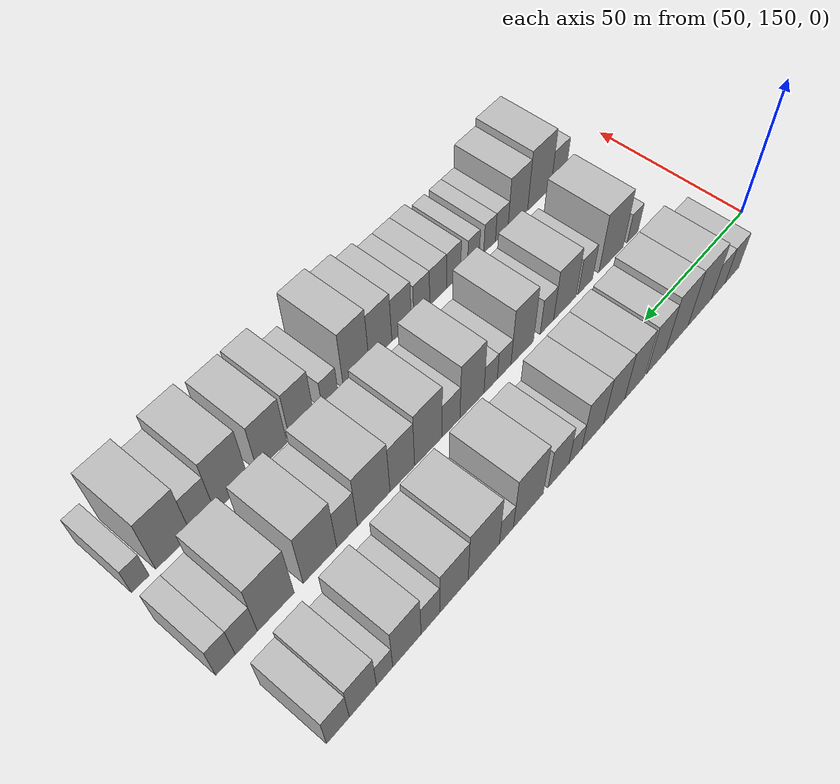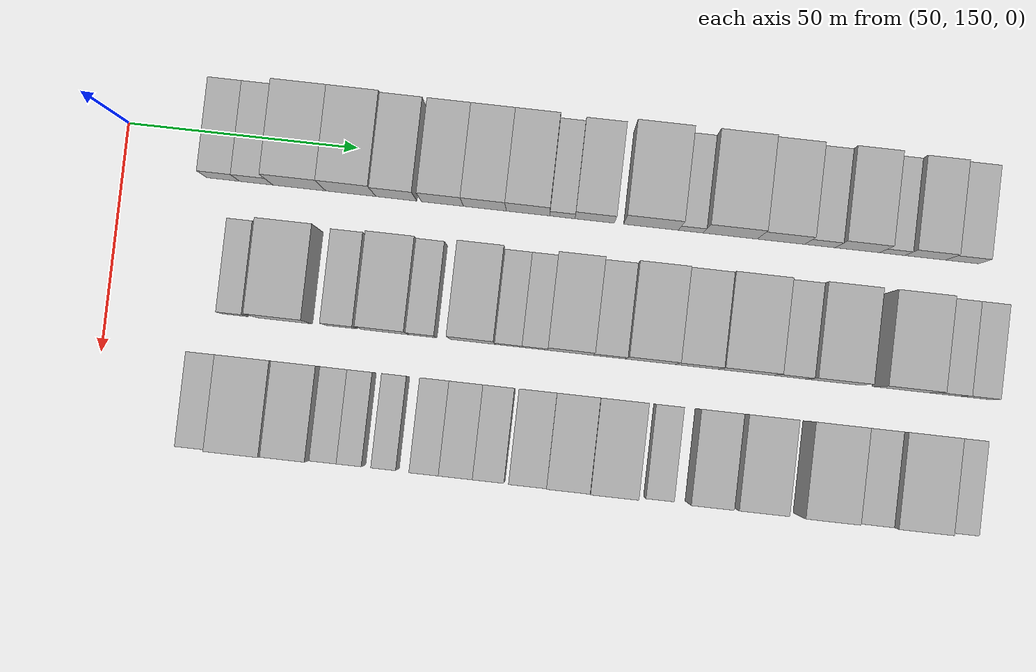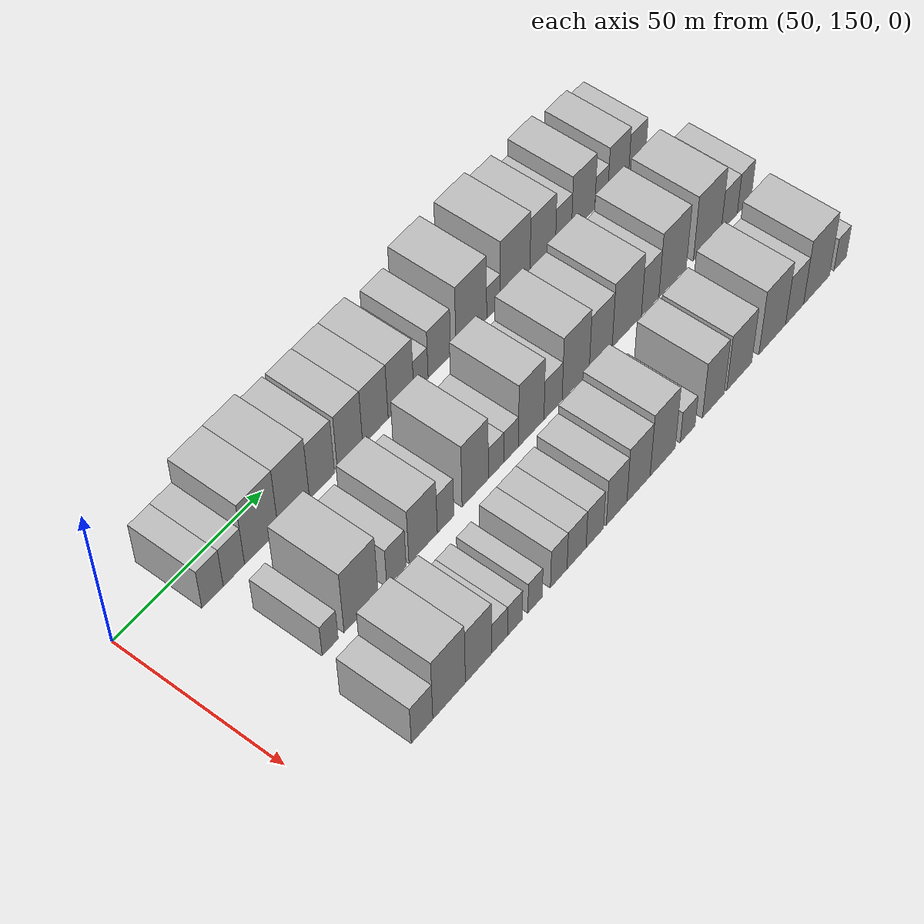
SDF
<sdf version="1.6">
 <world name="default">
  <model name="building_55">
   <static>1</static>
   <pose>50.0000 171.9306 0 0.000000 0.000000 0.000000</pose>
   <link name="link">
    <pose>0 0 7.50 0 0 0</pose>
    <collision name="collision"><geometry><box><size>20.0000 7.1762 15.0000</size></box></geometry></collision>
    <visual name="visual">
     <cast_shadows>0</cast_shadows>
     <geometry><box><size>20.0000 7.1762 15.0000</size></box></geometry>
     <material>
      <script>
       <uri>model://HANNAS_wall/materials/scripts</uri>
       <uri>model://HANNAS_wall/materials/textures</uri>
       <name>vrc/HANNAS_wall</name>
      </script>
     </material>
    </visual>
   </link>
  </model>
  <model name="building_56">
   <static>1</static>
   <pose>50.0000 179.1338 0 0.000000 0.000000 0.000000</pose>
   <link name="link">
    <pose>0 0 7.50 0 0 0</pose>
    <collision name="collision"><geometry><box><size>20.0000 7.2301 15.0000</size></box></geometry></collision>
    <visual name="visual">
     <cast_shadows>0</cast_shadows>
     <geometry><box><size>20.0000 7.2301 15.0000</size></box></geometry>
     <material>
      <script>
       <uri>model://HANNAS_wall/materials/scripts</uri>
       <uri>model://HANNAS_wall/materials/textures</uri>
       <name>vrc/HANNAS_wall</name>
      </script>
     </material>
    </visual>
   </link>
  </model>
  <model name="building_57">
   <static>1</static>
   <pose>50.0000 188.5393 0 0.000000 0.000000 0.000000</pose>
   <link name="link">
    <pose>0 0 12.00 0 0 0</pose>
    <collision name="collision"><geometry><box><size>20.0000 11.5809 24.0000</size></box></geometry></collision>
    <visual name="visual">
     <cast_shadows>0</cast_shadows>
     <geometry><box><size>20.0000 11.5809 24.0000</size></box></geometry>
     <material>
      <script>
       <uri>model://HANNAS_wall/materials/scripts</uri>
       <uri>model://HANNAS_wall/materials/textures</uri>
       <name>vrc/HANNAS_wall</name>
      </script>
     </material>
    </visual>
   </link>
  </model>
  <model name="building_58">
   <static>1</static>
   <pose>50.0000 199.7946 0 0.000000 0.000000 0.000000</pose>
   <link name="link">
    <pose>0 0 12.00 0 0 0</pose>
    <collision name="collision"><geometry><box><size>20.0000 10.9297 24.0000</size></box></geometry></collision>
    <visual name="visual">
     <cast_shadows>0</cast_shadows>
     <geometry><box><size>20.0000 10.9297 24.0000</size></box></geometry>
     <material>
      <script>
       <uri>model://HANNAS_wall/materials/scripts</uri>
       <uri>model://HANNAS_wall/materials/textures</uri>
       <name>vrc/HANNAS_wall</name>
      </script>
     </material>
    </visual>
   </link>
  </model>
  <model name="building_59">
   <static>1</static>
   <pose>50.0000 209.7275 0 0.000000 0.000000 0.000000</pose>
   <link name="link">
    <pose>0 0 10.50 0 0 0</pose>
    <collision name="collision"><geometry><box><size>20.0000 8.9361 21.0000</size></box></geometry></collision>
    <visual name="visual">
     <cast_shadows>0</cast_shadows>
     <geometry><box><size>20.0000 8.9361 21.0000</size></box></geometry>
     <material>
      <script>
       <uri>model://HANNAS_wall/materials/scripts</uri>
       <uri>model://HANNAS_wall/materials/textures</uri>
       <name>vrc/HANNAS_wall</name>
      </script>
     </material>
    </visual>
   </link>
  </model>
  <model name="building_60">
   <static>1</static>
   <pose>50.0000 219.7772 0 0.000000 0.000000 0.000000</pose>
   <link name="link">
    <pose>0 0 10.50 0 0 0</pose>
    <collision name="collision"><geometry><box><size>20.0000 9.1634 21.0000</size></box></geometry></collision>
    <visual name="visual">
     <cast_shadows>0</cast_shadows>
     <geometry><box><size>20.0000 9.1634 21.0000</size></box></geometry>
     <material>
      <script>
       <uri>model://HANNAS_wall/materials/scripts</uri>
       <uri>model://HANNAS_wall/materials/textures</uri>
       <name>vrc/HANNAS_wall</name>
      </script>
     </material>
    </visual>
   </link>
  </model>
  <model name="building_61">
   <static>1</static>
   <pose>50.0000 229.0346 0 0.000000 0.000000 0.000000</pose>
   <link name="link">
    <pose>0 0 10.50 0 0 0</pose>
    <collision name="collision"><geometry><box><size>20.0000 9.3516 21.0000</size></box></geometry></collision>
    <visual name="visual">
     <cast_shadows>0</cast_shadows>
     <geometry><box><size>20.0000 9.3516 21.0000</size></box></geometry>
     <material>
      <script>
       <uri>model://HANNAS_wall/materials/scripts</uri>
       <uri>model://HANNAS_wall/materials/textures</uri>
       <name>vrc/HANNAS_wall</name>
      </script>
     </material>
    </visual>
   </link>
  </model>
  <model name="building_62">
   <static>1</static>
   <pose>50.0000 238.4718 0 0.000000 0.000000 0.000000</pose>
   <link name="link">
    <pose>0 0 10.50 0 0 0</pose>
    <collision name="collision"><geometry><box><size>20.0000 9.5228 21.0000</size></box></geometry></collision>
    <visual name="visual">
     <cast_shadows>0</cast_shadows>
     <geometry><box><size>20.0000 9.5228 21.0000</size></box></geometry>
     <material>
      <script>
       <uri>model://HANNAS_wall/materials/scripts</uri>
       <uri>model://HANNAS_wall/materials/textures</uri>
       <name>vrc/HANNAS_wall</name>
      </script>
     </material>
    </visual>
   </link>
  </model>
  <model name="building_63">
   <static>1</static>
   <pose>50.0000 245.9495 0 0.000000 0.000000 0.000000</pose>
   <link name="link">
    <pose>0 0 6.00 0 0 0</pose>
    <collision name="collision"><geometry><box><size>20.0000 5.4326 12.0000</size></box></geometry></collision>
    <visual name="visual">
     <cast_shadows>0</cast_shadows>
     <geometry><box><size>20.0000 5.4326 12.0000</size></box></geometry>
     <material>
      <script>
       <uri>model://HANNAS_wall/materials/scripts</uri>
       <uri>model://HANNAS_wall/materials/textures</uri>
       <name>vrc/HANNAS_wall</name>
      </script>
     </material>
    </visual>
   </link>
  </model>
  <model name="building_64">
   <static>1</static>
   <pose>50.0000 252.9692 0 0.000000 0.000000 0.000000</pose>
   <link name="link">
    <pose>0 0 9.00 0 0 0</pose>
    <collision name="collision"><geometry><box><size>20.0000 8.6067 18.0000</size></box></geometry></collision>
    <visual name="visual">
     <cast_shadows>0</cast_shadows>
     <geometry><box><size>20.0000 8.6067 18.0000</size></box></geometry>
     <material>
      <script>
       <uri>model://HANNAS_wall/materials/scripts</uri>
       <uri>model://HANNAS_wall/materials/textures</uri>
       <name>vrc/HANNAS_wall</name>
      </script>
     </material>
    </visual>
   </link>
  </model>
  <model name="building_65">
   <static>1</static>
   <pose>50.0000 265.2506 0 0.000000 0.000000 0.000000</pose>
   <link name="link">
    <pose>0 0 12.00 0 0 0</pose>
    <collision name="collision"><geometry><box><size>20.0000 11.9563 24.0000</size></box></geometry></collision>
    <visual name="visual">
     <cast_shadows>0</cast_shadows>
     <geometry><box><size>20.0000 11.9563 24.0000</size></box></geometry>
     <material>
      <script>
       <uri>model://HANNAS_wall/materials/scripts</uri>
       <uri>model://HANNAS_wall/materials/textures</uri>
       <name>vrc/HANNAS_wall</name>
      </script>
     </material>
    </visual>
   </link>
  </model>
  <model name="building_66">
   <static>1</static>
   <pose>50.0000 273.9183 0 0.000000 0.000000 0.000000</pose>
   <link name="link">
    <pose>0 0 6.00 0 0 0</pose>
    <collision name="collision"><geometry><box><size>20.0000 5.3791 12.0000</size></box></geometry></collision>
    <visual name="visual">
     <cast_shadows>0</cast_shadows>
     <geometry><box><size>20.0000 5.3791 12.0000</size></box></geometry>
     <material>
      <script>
       <uri>model://HANNAS_wall/materials/scripts</uri>
       <uri>model://HANNAS_wall/materials/textures</uri>
       <name>vrc/HANNAS_wall</name>
      </script>
     </material>
    </visual>
   </link>
  </model>
  <model name="building_67">
   <static>1</static>
   <pose>50.0000 282.5137 0 0.000000 0.000000 0.000000</pose>
   <link name="link">
    <pose>0 0 12.00 0 0 0</pose>
    <collision name="collision"><geometry><box><size>20.0000 11.8119 24.0000</size></box></geometry></collision>
    <visual name="visual">
     <cast_shadows>0</cast_shadows>
     <geometry><box><size>20.0000 11.8119 24.0000</size></box></geometry>
     <material>
      <script>
       <uri>model://HANNAS_wall/materials/scripts</uri>
       <uri>model://HANNAS_wall/materials/textures</uri>
       <name>vrc/HANNAS_wall</name>
      </script>
     </material>
    </visual>
   </link>
  </model>
  <model name="building_68">
   <static>1</static>
   <pose>50.0000 293.5801 0 0.000000 0.000000 0.000000</pose>
   <link name="link">
    <pose>0 0 10.50 0 0 0</pose>
    <collision name="collision"><geometry><box><size>20.0000 10.3208 21.0000</size></box></geometry></collision>
    <visual name="visual">
     <cast_shadows>0</cast_shadows>
     <geometry><box><size>20.0000 10.3208 21.0000</size></box></geometry>
     <material>
      <script>
       <uri>model://HANNAS_wall/materials/scripts</uri>
       <uri>model://HANNAS_wall/materials/textures</uri>
       <name>vrc/HANNAS_wall</name>
      </script>
     </material>
    </visual>
   </link>
  </model>
  <model name="building_69">
   <static>1</static>
   <pose>50.0000 302.0350 0 0.000000 0.000000 0.000000</pose>
   <link name="link">
    <pose>0 0 7.50 0 0 0</pose>
    <collision name="collision"><geometry><box><size>20.0000 6.5890 15.0000</size></box></geometry></collision>
    <visual name="visual">
     <cast_shadows>0</cast_shadows>
     <geometry><box><size>20.0000 6.5890 15.0000</size></box></geometry>
     <material>
      <script>
       <uri>model://HANNAS_wall/materials/scripts</uri>
       <uri>model://HANNAS_wall/materials/textures</uri>
       <name>vrc/HANNAS_wall</name>
      </script>
     </material>
    </visual>
   </link>
  </model>
  <model name="building_70">
   <static>1</static>
   <pose>50.0000 310.1927 0 0.000000 0.000000 0.000000</pose>
   <link name="link">
    <pose>0 0 10.50 0 0 0</pose>
    <collision name="collision"><geometry><box><size>20.0000 9.7264 21.0000</size></box></geometry></collision>
    <visual name="visual">
     <cast_shadows>0</cast_shadows>
     <geometry><box><size>20.0000 9.7264 21.0000</size></box></geometry>
     <material>
      <script>
       <uri>model://HANNAS_wall/materials/scripts</uri>
       <uri>model://HANNAS_wall/materials/textures</uri>
       <name>vrc/HANNAS_wall</name>
      </script>
     </material>
    </visual>
   </link>
  </model>
  <model name="building_71">
   <static>1</static>
   <pose>50.0000 317.7797 0 0.000000 0.000000 0.000000</pose>
   <link name="link">
    <pose>0 0 6.00 0 0 0</pose>
    <collision name="collision"><geometry><box><size>20.0000 5.4477 12.0000</size></box></geometry></collision>
    <visual name="visual">
     <cast_shadows>0</cast_shadows>
     <geometry><box><size>20.0000 5.4477 12.0000</size></box></geometry>
     <material>
      <script>
       <uri>model://HANNAS_wall/materials/scripts</uri>
       <uri>model://HANNAS_wall/materials/textures</uri>
       <name>vrc/HANNAS_wall</name>
      </script>
     </material>
    </visual>
   </link>
  </model>
  <model name="building_72">
   <static>1</static>
   <pose>50.0000 324.9481 0 0.000000 0.000000 0.000000</pose>
   <link name="link">
    <pose>0 0 9.00 0 0 0</pose>
    <collision name="collision"><geometry><box><size>20.0000 8.8891 18.0000</size></box></geometry></collision>
    <visual name="visual">
     <cast_shadows>0</cast_shadows>
     <geometry><box><size>20.0000 8.8891 18.0000</size></box></geometry>
     <material>
      <script>
       <uri>model://HANNAS_wall/materials/scripts</uri>
       <uri>model://HANNAS_wall/materials/textures</uri>
       <name>vrc/HANNAS_wall</name>
      </script>
     </material>
    </visual>
   </link>
  </model>
  <model name="building_73">
   <static>1</static>
   <pose>50.0000 333.0290 0 0.000000 0.000000 0.000000</pose>
   <link name="link">
    <pose>0 0 7.50 0 0 0</pose>
    <collision name="collision"><geometry><box><size>20.0000 7.2727 15.0000</size></box></geometry></collision>
    <visual name="visual">
     <cast_shadows>0</cast_shadows>
     <geometry><box><size>20.0000 7.2727 15.0000</size></box></geometry>
     <material>
      <script>
       <uri>model://HANNAS_wall/materials/scripts</uri>
       <uri>model://HANNAS_wall/materials/textures</uri>
       <name>vrc/HANNAS_wall</name>
      </script>
     </material>
    </visual>
   </link>
  </model>
  <model name="building_132">
   <static>1</static>
   <pose>79.0000 178.1046 0 0.000000 0.000000 0.000000</pose>
   <link name="link">
    <pose>0 0 6.00 0 0 0</pose>
    <collision name="collision"><geometry><box><size>20.0000 5.4597 12.0000</size></box></geometry></collision>
    <visual name="visual">
     <cast_shadows>0</cast_shadows>
     <geometry><box><size>20.0000 5.4597 12.0000</size></box></geometry>
     <material>
      <script>
       <uri>model://HANNAS_wall/materials/scripts</uri>
       <uri>model://HANNAS_wall/materials/textures</uri>
       <name>vrc/HANNAS_wall</name>
      </script>
     </material>
    </visual>
   </link>
  </model>
  <model name="building_133">
   <static>1</static>
   <pose>79.0000 188.7952 0 0.000000 0.000000 0.000000</pose>
   <link name="link">
    <pose>0 0 12.00 0 0 0</pose>
    <collision name="collision"><geometry><box><size>20.0000 11.9215 24.0000</size></box></geometry></collision>
    <visual name="visual">
     <cast_shadows>0</cast_shadows>
     <geometry><box><size>20.0000 11.9215 24.0000</size></box></geometry>
     <material>
      <script>
       <uri>model://HANNAS_wall/materials/scripts</uri>
       <uri>model://HANNAS_wall/materials/textures</uri>
       <name>vrc/HANNAS_wall</name>
      </script>
     </material>
    </visual>
   </link>
  </model>
  <model name="building_134">
   <static>1</static>
   <pose>79.0000 201.1788 0 0.000000 0.000000 0.000000</pose>
   <link name="link">
    <pose>0 0 7.50 0 0 0</pose>
    <collision name="collision"><geometry><box><size>20.0000 6.8458 15.0000</size></box></geometry></collision>
    <visual name="visual">
     <cast_shadows>0</cast_shadows>
     <geometry><box><size>20.0000 6.8458 15.0000</size></box></geometry>
     <material>
      <script>
       <uri>model://HANNAS_wall/materials/scripts</uri>
       <uri>model://HANNAS_wall/materials/textures</uri>
       <name>vrc/HANNAS_wall</name>
      </script>
     </material>
    </visual>
   </link>
  </model>
  <model name="building_135">
   <static>1</static>
   <pose>79.0000 210.7209 0 0.000000 0.000000 0.000000</pose>
   <link name="link">
    <pose>0 0 10.50 0 0 0</pose>
    <collision name="collision"><geometry><box><size>20.0000 10.2384 21.0000</size></box></geometry></collision>
    <visual name="visual">
     <cast_shadows>0</cast_shadows>
     <geometry><box><size>20.0000 10.2384 21.0000</size></box></geometry>
     <material>
      <script>
       <uri>model://HANNAS_wall/materials/scripts</uri>
       <uri>model://HANNAS_wall/materials/textures</uri>
       <name>vrc/HANNAS_wall</name>
      </script>
     </material>
    </visual>
   </link>
  </model>
  <model name="building_136">
   <static>1</static>
   <pose>79.0000 218.8565 0 0.000000 0.000000 0.000000</pose>
   <link name="link">
    <pose>0 0 7.50 0 0 0</pose>
    <collision name="collision"><geometry><box><size>20.0000 6.0328 15.0000</size></box></geometry></collision>
    <visual name="visual">
     <cast_shadows>0</cast_shadows>
     <geometry><box><size>20.0000 6.0328 15.0000</size></box></geometry>
     <material>
      <script>
       <uri>model://HANNAS_wall/materials/scripts</uri>
       <uri>model://HANNAS_wall/materials/textures</uri>
       <name>vrc/HANNAS_wall</name>
      </script>
     </material>
    </visual>
   </link>
  </model>
  <model name="building_137">
   <static>1</static>
   <pose>79.0000 229.7588 0 0.000000 0.000000 0.000000</pose>
   <link name="link">
    <pose>0 0 12.00 0 0 0</pose>
    <collision name="collision"><geometry><box><size>20.0000 9.7717 24.0000</size></box></geometry></collision>
    <visual name="visual">
     <cast_shadows>0</cast_shadows>
     <geometry><box><size>20.0000 9.7717 24.0000</size></box></geometry>
     <material>
      <script>
       <uri>model://HANNAS_wall/materials/scripts</uri>
       <uri>model://HANNAS_wall/materials/textures</uri>
       <name>vrc/HANNAS_wall</name>
      </script>
     </material>
    </visual>
   </link>
  </model>
  <model name="building_138">
   <static>1</static>
   <pose>79.0000 237.5516 0 0.000000 0.000000 0.000000</pose>
   <link name="link">
    <pose>0 0 6.00 0 0 0</pose>
    <collision name="collision"><geometry><box><size>20.0000 5.8139 12.0000</size></box></geometry></collision>
    <visual name="visual">
     <cast_shadows>0</cast_shadows>
     <geometry><box><size>20.0000 5.8139 12.0000</size></box></geometry>
     <material>
      <script>
       <uri>model://HANNAS_wall/materials/scripts</uri>
       <uri>model://HANNAS_wall/materials/textures</uri>
       <name>vrc/HANNAS_wall</name>
      </script>
     </material>
    </visual>
   </link>
  </model>
  <model name="building_139">
   <static>1</static>
   <pose>79.0000 243.2428 0 0.000000 0.000000 0.000000</pose>
   <link name="link">
    <pose>0 0 6.00 0 0 0</pose>
    <collision name="collision"><geometry><box><size>20.0000 5.5685 12.0000</size></box></geometry></collision>
    <visual name="visual">
     <cast_shadows>0</cast_shadows>
     <geometry><box><size>20.0000 5.5685 12.0000</size></box></geometry>
     <material>
      <script>
       <uri>model://HANNAS_wall/materials/scripts</uri>
       <uri>model://HANNAS_wall/materials/textures</uri>
       <name>vrc/HANNAS_wall</name>
      </script>
     </material>
    </visual>
   </link>
  </model>
  <model name="building_140">
   <static>1</static>
   <pose>79.0000 250.9247 0 0.000000 0.000000 0.000000</pose>
   <link name="link">
    <pose>0 0 12.00 0 0 0</pose>
    <collision name="collision"><geometry><box><size>20.0000 9.7952 24.0000</size></box></geometry></collision>
    <visual name="visual">
     <cast_shadows>0</cast_shadows>
     <geometry><box><size>20.0000 9.7952 24.0000</size></box></geometry>
     <material>
      <script>
       <uri>model://HANNAS_wall/materials/scripts</uri>
       <uri>model://HANNAS_wall/materials/textures</uri>
       <name>vrc/HANNAS_wall</name>
      </script>
     </material>
    </visual>
   </link>
  </model>
  <model name="building_141">
   <static>1</static>
   <pose>79.0000 259.3629 0 0.000000 0.000000 0.000000</pose>
   <link name="link">
    <pose>0 0 7.50 0 0 0</pose>
    <collision name="collision"><geometry><box><size>20.0000 7.0812 15.0000</size></box></geometry></collision>
    <visual name="visual">
     <cast_shadows>0</cast_shadows>
     <geometry><box><size>20.0000 7.0812 15.0000</size></box></geometry>
     <material>
      <script>
       <uri>model://HANNAS_wall/materials/scripts</uri>
       <uri>model://HANNAS_wall/materials/textures</uri>
       <name>vrc/HANNAS_wall</name>
      </script>
     </material>
    </visual>
   </link>
  </model>
  <model name="building_142">
   <static>1</static>
   <pose>79.0000 268.2480 0 0.000000 0.000000 0.000000</pose>
   <link name="link">
    <pose>0 0 12.00 0 0 0</pose>
    <collision name="collision"><geometry><box><size>20.0000 10.6891 24.0000</size></box></geometry></collision>
    <visual name="visual">
     <cast_shadows>0</cast_shadows>
     <geometry><box><size>20.0000 10.6891 24.0000</size></box></geometry>
     <material>
      <script>
       <uri>model://HANNAS_wall/materials/scripts</uri>
       <uri>model://HANNAS_wall/materials/textures</uri>
       <name>vrc/HANNAS_wall</name>
      </script>
     </material>
    </visual>
   </link>
  </model>
  <model name="building_143">
   <static>1</static>
   <pose>79.0000 278.2023 0 0.000000 0.000000 0.000000</pose>
   <link name="link">
    <pose>0 0 10.50 0 0 0</pose>
    <collision name="collision"><geometry><box><size>20.0000 9.2196 21.0000</size></box></geometry></collision>
    <visual name="visual">
     <cast_shadows>0</cast_shadows>
     <geometry><box><size>20.0000 9.2196 21.0000</size></box></geometry>
     <material>
      <script>
       <uri>model://HANNAS_wall/materials/scripts</uri>
       <uri>model://HANNAS_wall/materials/textures</uri>
       <name>vrc/HANNAS_wall</name>
      </script>
     </material>
    </visual>
   </link>
  </model>
  <model name="building_144">
   <static>1</static>
   <pose>79.0000 288.7711 0 0.000000 0.000000 0.000000</pose>
   <link name="link">
    <pose>0 0 12.00 0 0 0</pose>
    <collision name="collision"><geometry><box><size>20.0000 11.9180 24.0000</size></box></geometry></collision>
    <visual name="visual">
     <cast_shadows>0</cast_shadows>
     <geometry><box><size>20.0000 11.9180 24.0000</size></box></geometry>
     <material>
      <script>
       <uri>model://HANNAS_wall/materials/scripts</uri>
       <uri>model://HANNAS_wall/materials/textures</uri>
       <name>vrc/HANNAS_wall</name>
      </script>
     </material>
    </visual>
   </link>
  </model>
  <model name="building_145">
   <static>1</static>
   <pose>79.0000 298.3489 0 0.000000 0.000000 0.000000</pose>
   <link name="link">
    <pose>0 0 9.00 0 0 0</pose>
    <collision name="collision"><geometry><box><size>20.0000 7.2376 18.0000</size></box></geometry></collision>
    <visual name="visual">
     <cast_shadows>0</cast_shadows>
     <geometry><box><size>20.0000 7.2376 18.0000</size></box></geometry>
     <material>
      <script>
       <uri>model://HANNAS_wall/materials/scripts</uri>
       <uri>model://HANNAS_wall/materials/textures</uri>
       <name>vrc/HANNAS_wall</name>
      </script>
     </material>
    </visual>
   </link>
  </model>
  <model name="building_146">
   <static>1</static>
   <pose>79.0000 307.7275 0 0.000000 0.000000 0.000000</pose>
   <link name="link">
    <pose>0 0 12.00 0 0 0</pose>
    <collision name="collision"><geometry><box><size>20.0000 11.5196 24.0000</size></box></geometry></collision>
    <visual name="visual">
     <cast_shadows>0</cast_shadows>
     <geometry><box><size>20.0000 11.5196 24.0000</size></box></geometry>
     <material>
      <script>
       <uri>model://HANNAS_wall/materials/scripts</uri>
       <uri>model://HANNAS_wall/materials/textures</uri>
       <name>vrc/HANNAS_wall</name>
      </script>
     </material>
    </visual>
   </link>
  </model>
  <model name="building_147">
   <static>1</static>
   <pose>79.0000 322.4708 0 0.000000 0.000000 0.000000</pose>
   <link name="link">
    <pose>0 0 12.00 0 0 0</pose>
    <collision name="collision"><geometry><box><size>20.0000 11.9671 24.0000</size></box></geometry></collision>
    <visual name="visual">
     <cast_shadows>0</cast_shadows>
     <geometry><box><size>20.0000 11.9671 24.0000</size></box></geometry>
     <material>
      <script>
       <uri>model://HANNAS_wall/materials/scripts</uri>
       <uri>model://HANNAS_wall/materials/textures</uri>
       <name>vrc/HANNAS_wall</name>
      </script>
     </material>
    </visual>
   </link>
  </model>
  <model name="building_148">
   <static>1</static>
   <pose>79.0000 331.9648 0 0.000000 0.000000 0.000000</pose>
   <link name="link">
    <pose>0 0 7.50 0 0 0</pose>
    <collision name="collision"><geometry><box><size>20.0000 7.0208 15.0000</size></box></geometry></collision>
    <visual name="visual">
     <cast_shadows>0</cast_shadows>
     <geometry><box><size>20.0000 7.0208 15.0000</size></box></geometry>
     <material>
      <script>
       <uri>model://HANNAS_wall/materials/scripts</uri>
       <uri>model://HANNAS_wall/materials/textures</uri>
       <name>vrc/HANNAS_wall</name>
      </script>
     </material>
    </visual>
   </link>
  </model>
  <model name="building_149">
   <static>1</static>
   <pose>79.0000 338.5031 0 0.000000 0.000000 0.000000</pose>
   <link name="link">
    <pose>0 0 7.50 0 0 0</pose>
    <collision name="collision"><geometry><box><size>20.0000 6.0558 15.0000</size></box></geometry></collision>
    <visual name="visual">
     <cast_shadows>0</cast_shadows>
     <geometry><box><size>20.0000 6.0558 15.0000</size></box></geometry>
     <material>
      <script>
       <uri>model://HANNAS_wall/materials/scripts</uri>
       <uri>model://HANNAS_wall/materials/textures</uri>
       <name>vrc/HANNAS_wall</name>
      </script>
     </material>
    </visual>
   </link>
  </model>
  <model name="building_207">
   <static>1</static>
   <pose>108.0000 174.2640 0 0.000000 0.000000 0.000000</pose>
   <link name="link">
    <pose>0 0 7.50 0 0 0</pose>
    <collision name="collision"><geometry><box><size>20.0000 7.3921 15.0000</size></box></geometry></collision>
    <visual name="visual">
     <cast_shadows>0</cast_shadows>
     <geometry><box><size>20.0000 7.3921 15.0000</size></box></geometry>
     <material>
      <script>
       <uri>model://HANNAS_wall/materials/scripts</uri>
       <uri>model://HANNAS_wall/materials/textures</uri>
       <name>vrc/HANNAS_wall</name>
      </script>
     </material>
    </visual>
   </link>
  </model>
  <model name="building_208">
   <static>1</static>
   <pose>108.0000 183.6221 0 0.000000 0.000000 0.000000</pose>
   <link name="link">
    <pose>0 0 12.00 0 0 0</pose>
    <collision name="collision"><geometry><box><size>20.0000 11.3242 24.0000</size></box></geometry></collision>
    <visual name="visual">
     <cast_shadows>0</cast_shadows>
     <geometry><box><size>20.0000 11.3242 24.0000</size></box></geometry>
     <material>
      <script>
       <uri>model://HANNAS_wall/materials/scripts</uri>
       <uri>model://HANNAS_wall/materials/textures</uri>
       <name>vrc/HANNAS_wall</name>
      </script>
     </material>
    </visual>
   </link>
  </model>
  <model name="building_209">
   <static>1</static>
   <pose>108.0000 193.9323 0 0.000000 0.000000 0.000000</pose>
   <link name="link">
    <pose>0 0 10.50 0 0 0</pose>
    <collision name="collision"><geometry><box><size>20.0000 9.2961 21.0000</size></box></geometry></collision>
    <visual name="visual">
     <cast_shadows>0</cast_shadows>
     <geometry><box><size>20.0000 9.2961 21.0000</size></box></geometry>
     <material>
      <script>
       <uri>model://HANNAS_wall/materials/scripts</uri>
       <uri>model://HANNAS_wall/materials/textures</uri>
       <name>vrc/HANNAS_wall</name>
      </script>
     </material>
    </visual>
   </link>
  </model>
  <model name="building_210">
   <static>1</static>
   <pose>108.0000 201.4589 0 0.000000 0.000000 0.000000</pose>
   <link name="link">
    <pose>0 0 6.00 0 0 0</pose>
    <collision name="collision"><geometry><box><size>20.0000 5.7571 12.0000</size></box></geometry></collision>
    <visual name="visual">
     <cast_shadows>0</cast_shadows>
     <geometry><box><size>20.0000 5.7571 12.0000</size></box></geometry>
     <material>
      <script>
       <uri>model://HANNAS_wall/materials/scripts</uri>
       <uri>model://HANNAS_wall/materials/textures</uri>
       <name>vrc/HANNAS_wall</name>
      </script>
     </material>
    </visual>
   </link>
  </model>
  <model name="building_211">
   <static>1</static>
   <pose>108.0000 207.0061 0 0.000000 0.000000 0.000000</pose>
   <link name="link">
    <pose>0 0 6.00 0 0 0</pose>
    <collision name="collision"><geometry><box><size>20.0000 5.3373 12.0000</size></box></geometry></collision>
    <visual name="visual">
     <cast_shadows>0</cast_shadows>
     <geometry><box><size>20.0000 5.3373 12.0000</size></box></geometry>
     <material>
      <script>
       <uri>model://HANNAS_wall/materials/scripts</uri>
       <uri>model://HANNAS_wall/materials/textures</uri>
       <name>vrc/HANNAS_wall</name>
      </script>
     </material>
    </visual>
   </link>
  </model>
  <model name="building_212">
   <static>1</static>
   <pose>108.0000 214.3092 0 0.000000 0.000000 0.000000</pose>
   <link name="link">
    <pose>0 0 6.00 0 0 0</pose>
    <collision name="collision"><geometry><box><size>20.0000 5.2690 12.0000</size></box></geometry></collision>
    <visual name="visual">
     <cast_shadows>0</cast_shadows>
     <geometry><box><size>20.0000 5.2690 12.0000</size></box></geometry>
     <material>
      <script>
       <uri>model://HANNAS_wall/materials/scripts</uri>
       <uri>model://HANNAS_wall/materials/textures</uri>
       <name>vrc/HANNAS_wall</name>
      </script>
     </material>
    </visual>
   </link>
  </model>
  <model name="building_213">
   <static>1</static>
   <pose>108.0000 223.0360 0 0.000000 0.000000 0.000000</pose>
   <link name="link">
    <pose>0 0 7.50 0 0 0</pose>
    <collision name="collision"><geometry><box><size>20.0000 6.1845 15.0000</size></box></geometry></collision>
    <visual name="visual">
     <cast_shadows>0</cast_shadows>
     <geometry><box><size>20.0000 6.1845 15.0000</size></box></geometry>
     <material>
      <script>
       <uri>model://HANNAS_wall/materials/scripts</uri>
       <uri>model://HANNAS_wall/materials/textures</uri>
       <name>vrc/HANNAS_wall</name>
      </script>
     </material>
    </visual>
   </link>
  </model>
  <model name="building_214">
   <static>1</static>
   <pose>108.0000 229.7118 0 0.000000 0.000000 0.000000</pose>
   <link name="link">
    <pose>0 0 7.50 0 0 0</pose>
    <collision name="collision"><geometry><box><size>20.0000 7.1673 15.0000</size></box></geometry></collision>
    <visual name="visual">
     <cast_shadows>0</cast_shadows>
     <geometry><box><size>20.0000 7.1673 15.0000</size></box></geometry>
     <material>
      <script>
       <uri>model://HANNAS_wall/materials/scripts</uri>
       <uri>model://HANNAS_wall/materials/textures</uri>
       <name>vrc/HANNAS_wall</name>
      </script>
     </material>
    </visual>
   </link>
  </model>
  <model name="building_215">
   <static>1</static>
   <pose>108.0000 236.6265 0 0.000000 0.000000 0.000000</pose>
   <link name="link">
    <pose>0 0 7.50 0 0 0</pose>
    <collision name="collision"><geometry><box><size>20.0000 6.6622 15.0000</size></box></geometry></collision>
    <visual name="visual">
     <cast_shadows>0</cast_shadows>
     <geometry><box><size>20.0000 6.6622 15.0000</size></box></geometry>
     <material>
      <script>
       <uri>model://HANNAS_wall/materials/scripts</uri>
       <uri>model://HANNAS_wall/materials/textures</uri>
       <name>vrc/HANNAS_wall</name>
      </script>
     </material>
    </visual>
   </link>
  </model>
  <model name="building_216">
   <static>1</static>
   <pose>108.0000 244.9397 0 0.000000 0.000000 0.000000</pose>
   <link name="link">
    <pose>0 0 9.00 0 0 0</pose>
    <collision name="collision"><geometry><box><size>20.0000 7.9642 18.0000</size></box></geometry></collision>
    <visual name="visual">
     <cast_shadows>0</cast_shadows>
     <geometry><box><size>20.0000 7.9642 18.0000</size></box></geometry>
     <material>
      <script>
       <uri>model://HANNAS_wall/materials/scripts</uri>
       <uri>model://HANNAS_wall/materials/textures</uri>
       <name>vrc/HANNAS_wall</name>
      </script>
     </material>
    </visual>
   </link>
  </model>
  <model name="building_217">
   <static>1</static>
   <pose>108.0000 253.4693 0 0.000000 0.000000 0.000000</pose>
   <link name="link">
    <pose>0 0 10.50 0 0 0</pose>
    <collision name="collision"><geometry><box><size>20.0000 9.0950 21.0000</size></box></geometry></collision>
    <visual name="visual">
     <cast_shadows>0</cast_shadows>
     <geometry><box><size>20.0000 9.0950 21.0000</size></box></geometry>
     <material>
      <script>
       <uri>model://HANNAS_wall/materials/scripts</uri>
       <uri>model://HANNAS_wall/materials/textures</uri>
       <name>vrc/HANNAS_wall</name>
      </script>
     </material>
    </visual>
   </link>
  </model>
  <model name="building_218">
   <static>1</static>
   <pose>108.0000 263.0110 0 0.000000 0.000000 0.000000</pose>
   <link name="link">
    <pose>0 0 12.00 0 0 0</pose>
    <collision name="collision"><geometry><box><size>20.0000 9.9885 24.0000</size></box></geometry></collision>
    <visual name="visual">
     <cast_shadows>0</cast_shadows>
     <geometry><box><size>20.0000 9.9885 24.0000</size></box></geometry>
     <material>
      <script>
       <uri>model://HANNAS_wall/materials/scripts</uri>
       <uri>model://HANNAS_wall/materials/textures</uri>
       <name>vrc/HANNAS_wall</name>
      </script>
     </material>
    </visual>
   </link>
  </model>
  <model name="building_219">
   <static>1</static>
   <pose>108.0000 273.0013 0 0.000000 0.000000 0.000000</pose>
   <link name="link">
    <pose>0 0 6.00 0 0 0</pose>
    <collision name="collision"><geometry><box><size>20.0000 5.9920 12.0000</size></box></geometry></collision>
    <visual name="visual">
     <cast_shadows>0</cast_shadows>
     <geometry><box><size>20.0000 5.9920 12.0000</size></box></geometry>
     <material>
      <script>
       <uri>model://HANNAS_wall/materials/scripts</uri>
       <uri>model://HANNAS_wall/materials/textures</uri>
       <name>vrc/HANNAS_wall</name>
      </script>
     </material>
    </visual>
   </link>
  </model>
  <model name="building_220">
   <static>1</static>
   <pose>108.0000 283.4812 0 0.000000 0.000000 0.000000</pose>
   <link name="link">
    <pose>0 0 10.50 0 0 0</pose>
    <collision name="collision"><geometry><box><size>20.0000 8.9679 21.0000</size></box></geometry></collision>
    <visual name="visual">
     <cast_shadows>0</cast_shadows>
     <geometry><box><size>20.0000 8.9679 21.0000</size></box></geometry>
     <material>
      <script>
       <uri>model://HANNAS_wall/materials/scripts</uri>
       <uri>model://HANNAS_wall/materials/textures</uri>
       <name>vrc/HANNAS_wall</name>
      </script>
     </material>
    </visual>
   </link>
  </model>
  <model name="building_221">
   <static>1</static>
   <pose>108.0000 294.2087 0 0.000000 0.000000 0.000000</pose>
   <link name="link">
    <pose>0 0 10.50 0 0 0</pose>
    <collision name="collision"><geometry><box><size>20.0000 10.4870 21.0000</size></box></geometry></collision>
    <visual name="visual">
     <cast_shadows>0</cast_shadows>
     <geometry><box><size>20.0000 10.4870 21.0000</size></box></geometry>
     <material>
      <script>
       <uri>model://HANNAS_wall/materials/scripts</uri>
       <uri>model://HANNAS_wall/materials/textures</uri>
       <name>vrc/HANNAS_wall</name>
      </script>
     </material>
    </visual>
   </link>
  </model>
  <model name="building_222">
   <static>1</static>
   <pose>108.0000 308.1441 0 0.000000 0.000000 0.000000</pose>
   <link name="link">
    <pose>0 0 12.00 0 0 0</pose>
    <collision name="collision"><geometry><box><size>20.0000 11.3838 24.0000</size></box></geometry></collision>
    <visual name="visual">
     <cast_shadows>0</cast_shadows>
     <geometry><box><size>20.0000 11.3838 24.0000</size></box></geometry>
     <material>
      <script>
       <uri>model://HANNAS_wall/materials/scripts</uri>
       <uri>model://HANNAS_wall/materials/textures</uri>
       <name>vrc/HANNAS_wall</name>
      </script>
     </material>
    </visual>
   </link>
  </model>
  <model name="building_223">
   <static>1</static>
   <pose>108.0000 317.7353 0 0.000000 0.000000 0.000000</pose>
   <link name="link">
    <pose>0 0 9.00 0 0 0</pose>
    <collision name="collision"><geometry><box><size>20.0000 7.7986 18.0000</size></box></geometry></collision>
    <visual name="visual">
     <cast_shadows>0</cast_shadows>
     <geometry><box><size>20.0000 7.7986 18.0000</size></box></geometry>
     <material>
      <script>
       <uri>model://HANNAS_wall/materials/scripts</uri>
       <uri>model://HANNAS_wall/materials/textures</uri>
       <name>vrc/HANNAS_wall</name>
      </script>
     </material>
    </visual>
   </link>
  </model>
  <model name="building_224">
   <static>1</static>
   <pose>108.0000 327.3434 0 0.000000 0.000000 0.000000</pose>
   <link name="link">
    <pose>0 0 12.00 0 0 0</pose>
    <collision name="collision"><geometry><box><size>20.0000 11.4176 24.0000</size></box></geometry></collision>
    <visual name="visual">
     <cast_shadows>0</cast_shadows>
     <geometry><box><size>20.0000 11.4176 24.0000</size></box></geometry>
     <material>
      <script>
       <uri>model://HANNAS_wall/materials/scripts</uri>
       <uri>model://HANNAS_wall/materials/textures</uri>
       <name>vrc/HANNAS_wall</name>
      </script>
     </material>
    </visual>
   </link>
  </model>
  <model name="building_225">
   <static>1</static>
   <pose>108.0000 337.7928 0 0.000000 0.000000 0.000000</pose>
   <link name="link">
    <pose>0 0 6.00 0 0 0</pose>
    <collision name="collision"><geometry><box><size>20.0000 5.4813 12.0000</size></box></geometry></collision>
    <visual name="visual">
     <cast_shadows>0</cast_shadows>
     <geometry><box><size>20.0000 5.4813 12.0000</size></box></geometry>
     <material>
      <script>
       <uri>model://HANNAS_wall/materials/scripts</uri>
       <uri>model://HANNAS_wall/materials/textures</uri>
       <name>vrc/HANNAS_wall</name>
      </script>
     </material>
    </visual>
   </link>
  </model>
 </world>
</sdf>
